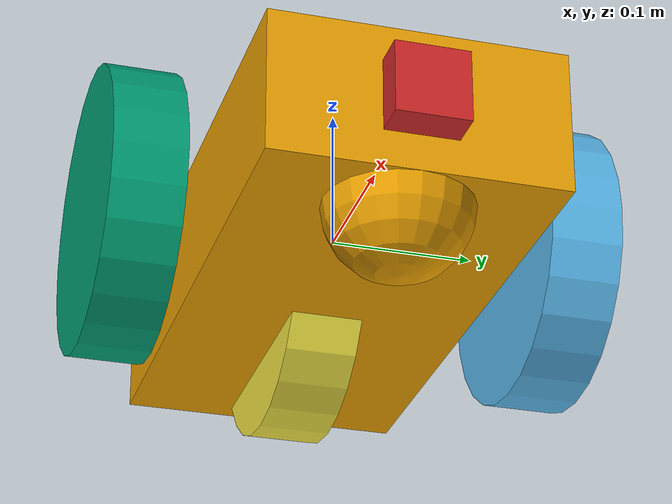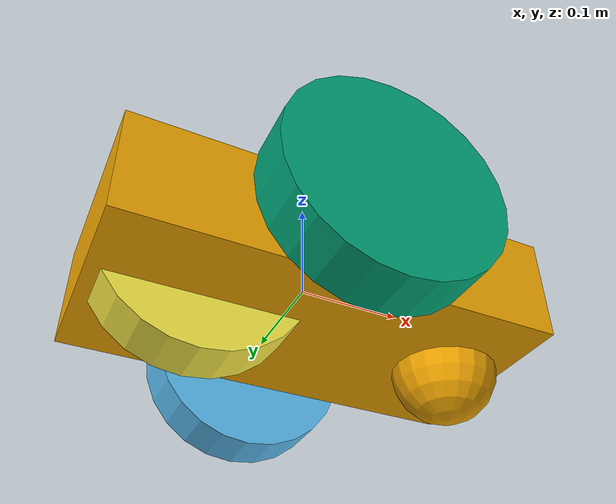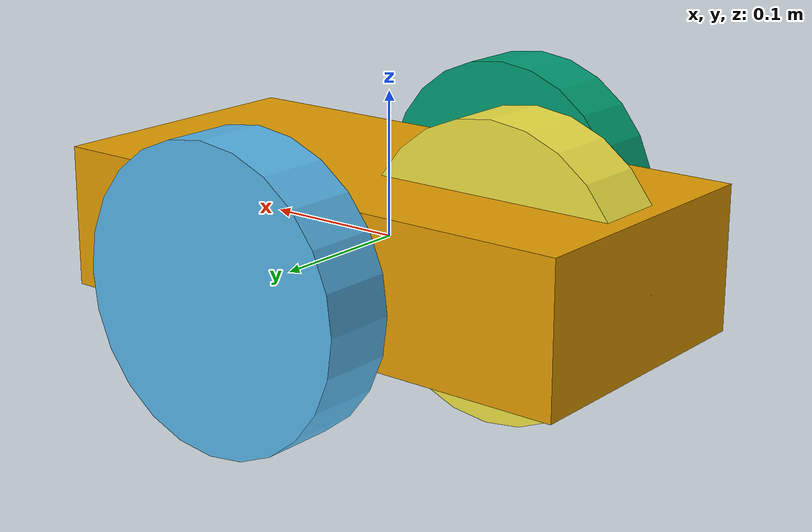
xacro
<?xml version="1.0"?>

<robot name="myrobot" xmlns:xacro="http://www.ros.org/wiki/xacro">

      <xacro:property name="camera_size" value="0.05" />
      <xacro:property name="camera_mass" value="0.1" />
     <xacro:include filename="$(find spcbot_description)/urdf/materials.xacro"/>
     <xacro:include filename="$(find spcbot_description)/urdf/spcbot.gazebo"/>

     <link name="chassis">
        <pose>0 0 0.1 0 0 0</pose>
        <inertial>
          <origin xyz="0.0 0.0 0.1" rpy="0.0 0.0 0.0"/>
          <mass value="15.0"/>
          <inertia ixx="0.1" ixy="0.0" ixz="0.0" iyy="0.1" iyz="0.0" izz="0.1"/>
        </inertial>
        <visual name="chassis_visual">
           <origin xyz="0.0 0.0 0.0" rpy="0.0 0.0 0.0"/>
           <geometry>
              <box size = "0.4 0.2 0.1"/>
           </geometry>
        </visual>
        <collision name="collision">
            <geometry>
                <box size="0.4 0.2 0.1"/>
            </geometry>
        </collision>

        <collision name="caster_collision">
        <origin xyz="-0.15 0 -0.05" rpy="0.0 0.0 0.0"/>
           <geometry>
              <sphere radius= "0.05"/>
           </geometry>
           <surface>
             <friction>
               <ode>
                  <mu>0</mu>
                  <mu2>0</mu2>
                  <slip1>1.0</slip1>
                  <slip2>1.0</slip2>
               </ode>
             </friction>
           </surface>
         </collision>

       <visual name='caster_visual'>
	       <origin xyz="0.15 0 -0.05" rpy="0.0 0.0 0.0"/>
	       <geometry>
		  <sphere radius="0.05"/>
	       </geometry>
               <metarial name="blue">
                  <color rgba="${70/255} ${229/255} ${221/255} 1.0"/>
               </metarial>
       </visual>

       <collision name="caster_front_collision">
       <origin xyz="0.15 0 -0.05" rpy="0.0 0.0 0.0"/>
           <geometry>
              <sphere radius= "0.05"/>
           </geometry>
           <surface>
             <friction>
               <ode>
                  <mu>0</mu>
                  <mu2>0</mu2>
                  <slip1>1.0</slip1>
                  <slip2>1.0</slip2>
               </ode>
             </friction>
           </surface>
         </collision>

       <visual name='caster_front_visual'>
	       <origin xyz="0.15 0 -0.05" rpy="0.0 0.0 0.0"/>
	       <geometry>
		  <sphere radius="0.05"/>
	       </geometry>
       </visual>

     </link>

    <link name="left_wheel">
<!--origin xyz="0.1 0.13 0.1 rpy=0 1.5707 1.5707"/-->
    <collision name="collision_left">
        <origin xyz="0 0 0" rpy="0 1.5707 1.5707"/>
        <geometry>
           <cylinder radius="0.1" length="0.05"/>
        </geometry>
    </collision>
    <visual name="left_wheel_visual">
       <origin xyz="0 0 0" rpy="0 1.5707 1.5707"/>
        <geometry>
           <cylinder radius="0.1" length="0.05"/>
        </geometry>
        <metarial name="PBlack">
        </metarial>

   </visual>

   <inertial>
        <origin xyz="0 0 0" rpy="0 1.5707 1.5707"/>
        <mass value="5"/>
        <inertia
             ixx=".1" ixy="0.0" ixz="0.0"
             iyy=".1" iyz="0.0" izz="0.1"/>
   </inertial>
   </link>

   <link name="right_wheel">
   <!--origin xyz="0.1 -0.13 0.1" rpy="0 1.5707 1.5707"/-->
   <collision name="collision_right">
        <origin xyz="0 0 0" rpy="0 1.5707 1.5707"/>
        <geometry>
          <cylinder radius="0.1" length="0.05"/>
        </geometry>
   </collision>

   <visual name="left_wheel_visual">
       <origin xyz="0 0 0" rpy="0 1.5707 1.5707"/>
        <geometry>
           <cylinder radius="0.1" length="0.05"/>
        </geometry>
       <metarial name="PBlack">
        </metarial>
   </visual>
   <inertial>
        <origin xyz="0 0 0" rpy="0 1.5707 1.5707"/>
        <mass value="5"/>
        <inertia
             ixx=".1" ixy="0.0" ixz="0.0"
             iyy=".1" iyz="0.0" izz="0.1"/>
   </inertial>
   </link>

   <joint type="continuous" name="left_wheel_hinge">
	   <!--origin xyz="0.1 0.13 0" rpy="0 1.5707 1.5707"/-->
	   <origin xyz= "0 0.15 0" rpy="0 0 0"/>
	   <child link="left_wheel"/>
	   <parent link="chassis"/>
	   <axis xyz="0 1 0" rpy="0 0 0"/>
	   <limit effort="10000" velocity="1000"/>
	   <joint_properties damping="1.0" friction="1.0"/>
   </joint>

   <joint type="continuous" name="right_wheel_hinge">
	   <!--origin xyz="0.1 -0.13 0" rpy="0 1.5707 1.5707"/-->
	   <origin xyz= "0 -0.15 0" rpy="0 0 0"/>
	   <child link="right_wheel"/>
	   <parent link="chassis"/>
	   <axis xyz="0 1 0" rpy="0 0 0"/>
	   <limit effort="10000" velocity="1000"/>
	   <joint_properties damping="1.0" friction="1.0"/>
   </joint>

<link name="back_wheel">
<!--origin xyz="0.1 0.13 0.1 rpy=0 1.5707 1.5707"/-->
    <collision name="collision_back">
        <origin xyz="0 0 0" rpy="0 1.5707 1.5707"/>
        <geometry>
           <cylinder radius="0.1" length="0.05"/>
        </geometry>
    </collision>
    <visual name="back_wheel_visual">
       <origin xyz="0 0 0" rpy="0 1.5707 1.5707"/>
        <geometry>
           <cylinder radius="0.1" length="0.05"/>
        </geometry>
        <metarial name="PBlack">
        </metarial>

   </visual>

   <inertial>
        <origin xyz="0 0 0" rpy="0 1.5707 1.5707"/>
        <mass value="5"/>
        <inertia
             ixx=".1" ixy="0.0" ixz="0.0"
             iyy=".1" iyz="0.0" izz="0.1"/>
   </inertial>
   </link>

   <joint type="continuous" name="back_wheel_hinge">
	   <!--origin xyz="0.1 -0.13 0" rpy="0 1.5707 1.5707"/-->
	   <origin xyz= "-0.1 0 0" rpy="0 0 0"/>
	   <child link="back_wheel"/>
	   <parent link="chassis"/>
	   <axis xyz="0 1 0" rpy="0 0 0"/>
	   <limit effort="10000" velocity="1000"/>
	   <joint_properties damping="1.0" friction="1.0"/>
   </joint>

  <!-- Camera -->
  <link name="camera">
    <collision>
      <origin xyz="0 0 0" rpy="0 0 0"/>
      <geometry>
    <box size="${camera_size} ${camera_size} ${camera_size}"/>
      </geometry>
    </collision>

    <visual>
      <origin xyz="0 0 0" rpy="0 0 0"/>
      <geometry>
    <box size="${camera_size} ${camera_size} ${camera_size}"/>
      </geometry>
      <material name="red"/>
    </visual>

    <inertial>
      <mass value="${camera_mass}" />
      <origin xyz="0 0 0" rpy="0 0 0"/>
      <inertia ixx="1e-6" ixy="0" ixz="0" iyy="1e-6" iyz="0" izz="1e-6" />
    </inertial>
  </link>

    <joint name="camera_joint" type="fixed">
    <axis xyz="0 1 0" />
    <origin xyz=".2 0 0" rpy="0 0 0"/>
    <parent link="chassis"/>
    <child link="camera"/>
  </joint>

</robot>

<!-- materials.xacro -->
<robot>

	<material name="Blue">
		<color rgba="70 229 221 1.0"/>
	</material>

	<material name="PBlack">
		<color rgba="40 5 34 1.0"/>
	</material>

	<material name="WBlack">
		<color rgba="0.117 0.117 0.117 1.0"/>
	</material>

	<material name="HYellow">
		<color rgba="1.0 0.811 0.151 1.0"/>
	</material>

	<material name="CRed">
		<color rgba="0.8 0.0 0.0 1.0"/>
	</material>

	<material name="TBlack">
		<color rgba="0.038 0.038 0.038 1.0"/>
	</material>

</robot>
